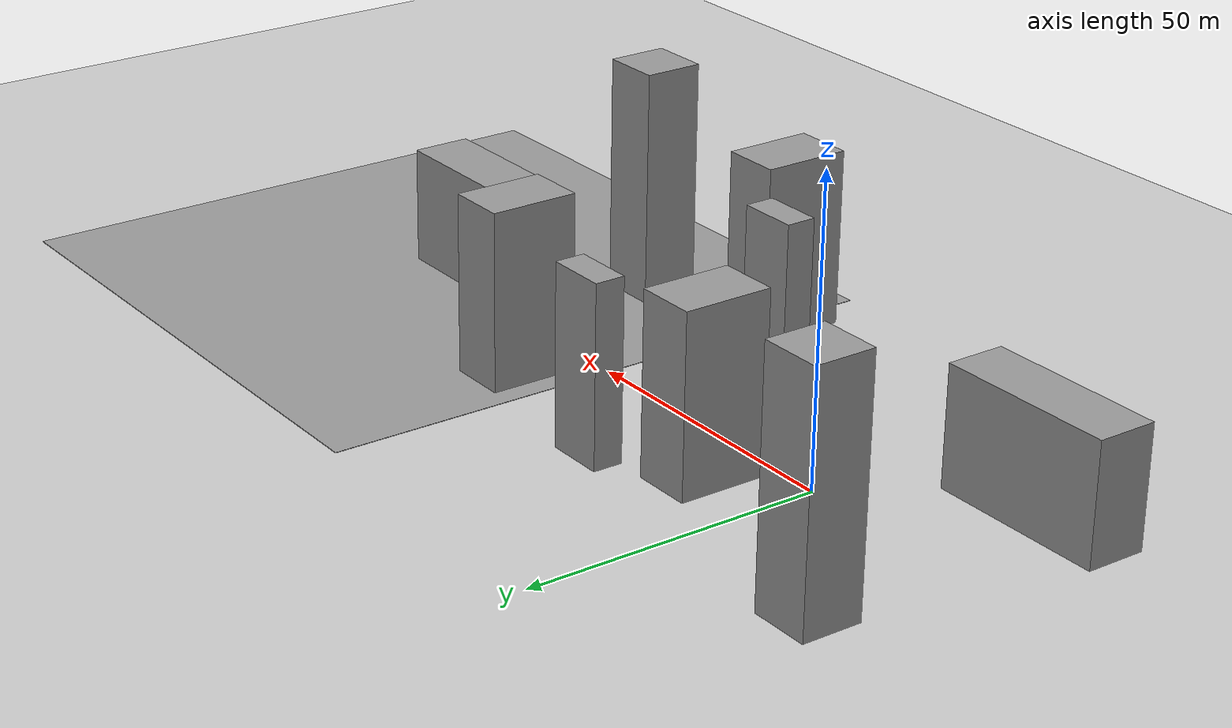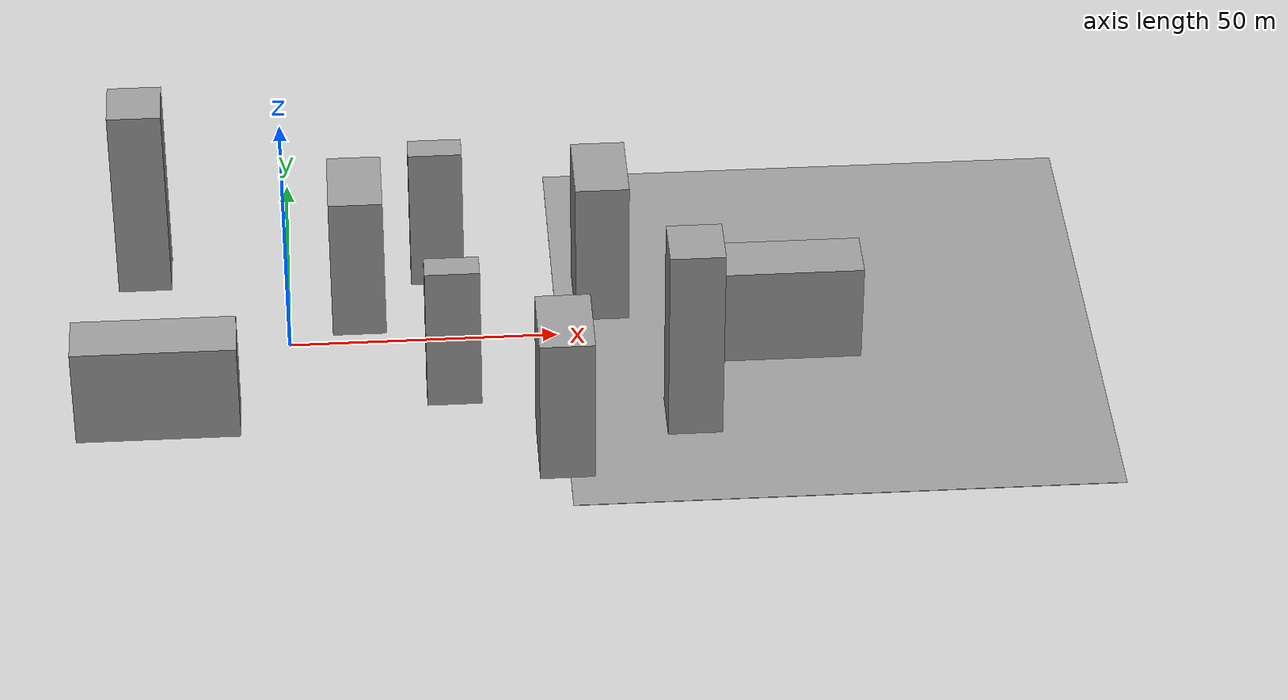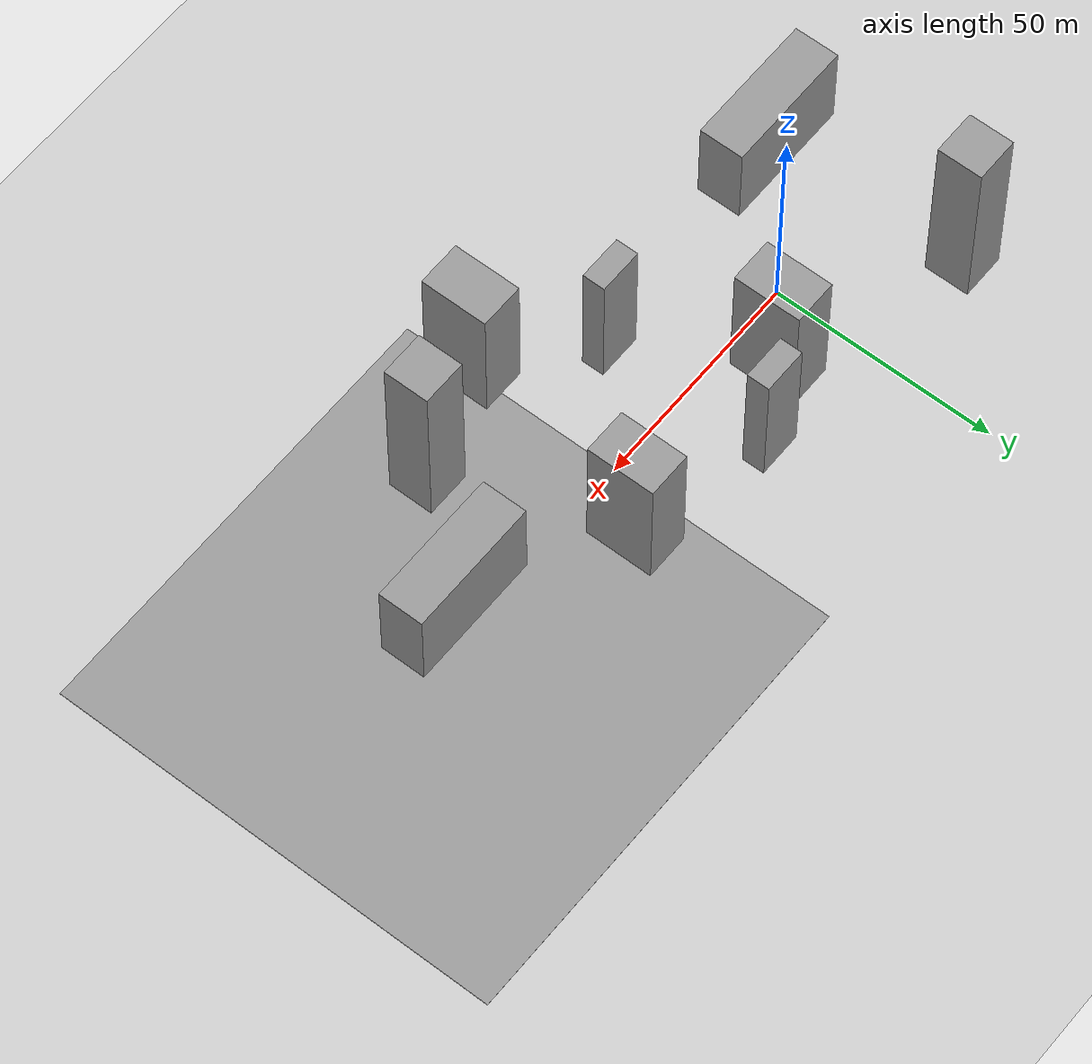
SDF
<sdf version="1.6">
 <world name="default">
  <light name="sun" type="directional">
   <pose>0 0 10 0 -0 0</pose>
   <diffuse>0.8 0.8 0.8 1</diffuse>
   <specular>0.2 0.2 0.2 1</specular>
   <attenuation>
    <range>1000</range>
    <constant>0.9</constant>
    <linear>0.01</linear>
    <quadratic>0.001</quadratic>
   </attenuation>
   <direction>-0.5 0.1 -0.9</direction>
  </light>
  <model name="ground_plane">
   <static>1</static>
   <link name="link">
    <collision name="collision">
     <geometry><plane><normal>0 0 1</normal><size>100 100</size></plane></geometry>
     <surface><friction><ode><mu>100</mu><mu2>50</mu2></ode></friction></surface>
    </collision>
    <visual name="visual">
     <cast_shadows>0</cast_shadows>
     <geometry><plane><normal>0 0 1</normal><size>100 100</size></plane></geometry>
     <material>
      <script><uri>file://media/materials/scripts/gazebo.material</uri><name>Gazebo/Grey</name></script>
     </material>
    </visual>
   </link>
  </model>
  <gravity>0 0 -9.8</gravity>
  <magnetic_field>6e-06 2.3e-05 -4.2e-05</magnetic_field>
  <atmosphere type="adiabatic"/>
  <physics name="default_physics" default="0" type="ode">
   <max_step_size>0.001</max_step_size>
   <real_time_factor>1</real_time_factor>
   <real_time_update_rate>1000</real_time_update_rate>
  </physics>
  <scene><ambient>0.4 0.4 0.4 1</ambient><background>0.7 0.7 0.7 1</background><shadows>1</shadows></scene>
  <spherical_coordinates>
   <surface_model>EARTH_WGS84</surface_model>
   <latitude_deg>0</latitude_deg>
   <longitude_deg>0</longitude_deg>
   <elevation>0</elevation>
   <heading_deg>0</heading_deg>
  </spherical_coordinates>
  <model name="ground_plane_0">
   <static>1</static>
   <link name="link">
    <collision name="collision">
     <geometry><plane><normal>0 0 1</normal><size>100 100</size></plane></geometry>
     <surface><friction><ode><mu>100</mu><mu2>50</mu2></ode></friction></surface>
    </collision>
    <visual name="visual">
     <cast_shadows>0</cast_shadows>
     <geometry><plane><normal>0 0 1</normal><size>100 100</size></plane></geometry>
     <material>
      <script><uri>file://media/materials/scripts/gazebo.material</uri><name>Gazebo/Grey</name></script>
     </material>
    </visual>
   </link>
   <pose>99.9656 0.118452 0 0 -0 0</pose>
  </model>
  <model name="building_4">
   <link name="link_2">
    <inertial>
     <mass>200000</mass>
     <inertia>
      <ixx>2.83333e+07</ixx>
      <ixy>0</ixy>
      <ixz>0</ixz>
      <iyy>2.83333e+07</iyy>
      <iyz>0</iyz>
      <izz>3.33333e+06</izz>
     </inertia>
    </inertial>
    <pose>0 0 20 0 -0 0</pose>
    <visual name="visual">
     <geometry><box><size>10 10 40</size></box></geometry>
     <material>
      <lighting>1</lighting>
      <script><uri>file://media/materials/scripts/gazebo.material</uri><name>Gazebo/Grey</name></script>
      <shader type="pixel"><normal_map>__default__</normal_map></shader>
      <ambient>0.3 0.3 0.3 1</ambient>
      <diffuse>0.7 0.7 0.7 1</diffuse>
      <specular>0.01 0.01 0.01 1</specular>
      <emissive>0 0 0 1</emissive>
     </material>
    </visual>
    <collision name="collision">
     <geometry><box><size>10 10 40</size></box></geometry>
     <surface>
      <friction>
       <ode><mu>1</mu><mu2>1</mu2><fdir1>0 0 0</fdir1><slip1>0</slip1><slip2>0</slip2></ode>
       <torsional>
        <coefficient>1</coefficient>
        <patch_radius>0</patch_radius>
        <surface_radius>0</surface_radius>
        <use_patch_radius>1</use_patch_radius>
        <ode><slip>0</slip></ode>
       </torsional>
      </friction>
      <bounce><restitution_coefficient>0</restitution_coefficient><threshold>1e+06</threshold></bounce>
      <contact>
       <collide_without_contact>0</collide_without_contact>
       <collide_without_contact_bitmask>1</collide_without_contact_bitmask>
       <collide_bitmask>1</collide_bitmask>
       <ode>
        <soft_cfm>0</soft_cfm>
        <soft_erp>0.2</soft_erp>
        <kp>1e+13</kp>
        <kd>1</kd>
        <max_vel>0.01</max_vel>
        <min_depth>0</min_depth>
       </ode>
       <bullet>
        <split_impulse>1</split_impulse>
        <split_impulse_penetration_threshold>-0.01</split_impulse_penetration_threshold>
        <soft_cfm>0</soft_cfm>
        <soft_erp>0.2</soft_erp>
        <kp>1e+13</kp>
        <kd>1</kd>
       </bullet>
      </contact>
     </surface>
    </collision>
   </link>
   <static>1</static>
   <pose>-27.2497 23.4822 0 0 -0 0</pose>
  </model>
  <model name="building_3_0">
   <link name="link_2">
    <inertial>
     <mass>3e+06</mass>
     <inertia>
      <ixx>1.25e+08</ixx>
      <ixy>0</ixy>
      <ixz>0</ixz>
      <iyy>3.25e+08</iyy>
      <iyz>0</iyz>
      <izz>2.5e+08</izz>
     </inertia>
    </inertial>
    <pose>0 0 10 0 -0 0</pose>
    <visual name="visual">
     <geometry><box><size>30 10 20</size></box></geometry>
     <material>
      <lighting>1</lighting>
      <script><uri>file://media/materials/scripts/gazebo.material</uri><name>Gazebo/Grey</name></script>
      <shader type="pixel"><normal_map>__default__</normal_map></shader>
      <ambient>0.3 0.3 0.3 1</ambient>
      <diffuse>0.7 0.7 0.7 1</diffuse>
      <specular>0.01 0.01 0.01 1</specular>
      <emissive>0 0 0 1</emissive>
     </material>
    </visual>
    <collision name="collision">
     <geometry><box><size>30 10 20</size></box></geometry>
     <surface>
      <friction>
       <ode><mu>1</mu><mu2>1</mu2><fdir1>0 0 0</fdir1><slip1>0</slip1><slip2>0</slip2></ode>
       <torsional>
        <coefficient>1</coefficient>
        <patch_radius>0</patch_radius>
        <surface_radius>0</surface_radius>
        <use_patch_radius>1</use_patch_radius>
        <ode><slip>0</slip></ode>
       </torsional>
      </friction>
      <bounce><restitution_coefficient>0</restitution_coefficient><threshold>1e+06</threshold></bounce>
      <contact>
       <collide_without_contact>0</collide_without_contact>
       <collide_without_contact_bitmask>1</collide_without_contact_bitmask>
       <collide_bitmask>1</collide_bitmask>
       <ode>
        <soft_cfm>0</soft_cfm>
        <soft_erp>0.2</soft_erp>
        <kp>1e+13</kp>
        <kd>1</kd>
        <max_vel>0.01</max_vel>
        <min_depth>0</min_depth>
       </ode>
       <bullet>
        <split_impulse>1</split_impulse>
        <split_impulse_penetration_threshold>-0.01</split_impulse_penetration_threshold>
        <soft_cfm>0</soft_cfm>
        <soft_erp>0.2</soft_erp>
        <kp>1e+13</kp>
        <kd>1</kd>
       </bullet>
      </contact>
     </surface>
    </collision>
   </link>
   <static>1</static>
   <pose>-24.3939 -21.3262 0 0 -0 0</pose>
  </model>
  <model name="building_2_1">
   <link name="link_2">
    <inertial>
     <mass>2.25e+06</mass>
     <inertia>
      <ixx>2.10938e+08</ixx>
      <ixy>0</ixy>
      <ixz>0</ixz>
      <iyy>1.875e+08</iyy>
      <iyz>0</iyz>
      <izz>6.09375e+07</izz>
     </inertia>
    </inertial>
    <pose>-0 -0 15 0 -0 0</pose>
    <visual name="visual">
     <geometry><box><size>10 15 30</size></box></geometry>
     <material>
      <lighting>1</lighting>
      <script><uri>file://media/materials/scripts/gazebo.material</uri><name>Gazebo/Grey</name></script>
      <shader type="pixel"><normal_map>__default__</normal_map></shader>
      <ambient>0.3 0.3 0.3 1</ambient>
      <diffuse>0.7 0.7 0.7 1</diffuse>
      <specular>0.01 0.01 0.01 1</specular>
      <emissive>0 0 0 1</emissive>
     </material>
    </visual>
    <collision name="collision">
     <geometry><box><size>10 15 30</size></box></geometry>
     <surface>
      <friction>
       <ode><mu>1</mu><mu2>1</mu2><fdir1>0 0 0</fdir1><slip1>0</slip1><slip2>0</slip2></ode>
       <torsional>
        <coefficient>1</coefficient>
        <patch_radius>0</patch_radius>
        <surface_radius>0</surface_radius>
        <use_patch_radius>1</use_patch_radius>
        <ode><slip>0</slip></ode>
       </torsional>
      </friction>
      <bounce><restitution_coefficient>0</restitution_coefficient><threshold>1e+06</threshold></bounce>
      <contact>
       <collide_without_contact>0</collide_without_contact>
       <collide_without_contact_bitmask>1</collide_without_contact_bitmask>
       <collide_bitmask>1</collide_bitmask>
       <ode>
        <soft_cfm>0</soft_cfm>
        <soft_erp>0.2</soft_erp>
        <kp>1e+13</kp>
        <kd>1</kd>
        <max_vel>0.01</max_vel>
        <min_depth>0</min_depth>
       </ode>
       <bullet>
        <split_impulse>1</split_impulse>
        <split_impulse_penetration_threshold>-0.01</split_impulse_penetration_threshold>
        <soft_cfm>0</soft_cfm>
        <soft_erp>0.2</soft_erp>
        <kp>1e+13</kp>
        <kd>1</kd>
       </bullet>
      </contact>
     </surface>
    </collision>
   </link>
   <static>1</static>
   <pose>13 10 0 0 -0 0</pose>
  </model>
  <model name="building_1_0">
   <link name="link_2">
    <inertial>
     <mass>750000</mass>
     <inertia>
      <ixx>5.78125e+07</ixx>
      <ixy>0</ixy>
      <ixz>0</ixz>
      <iyy>6.25e+07</iyy>
      <iyz>0</iyz>
      <izz>7.8125e+06</izz>
     </inertia>
    </inertial>
    <pose>0 0 15 0 -0 0</pose>
    <visual name="visual">
     <geometry><box><size>10 5 30</size></box></geometry>
     <material>
      <lighting>1</lighting>
      <script><uri>file://media/materials/scripts/gazebo.material</uri><name>Gazebo/Grey</name></script>
      <shader type="pixel"><normal_map>__default__</normal_map></shader>
      <ambient>0.3 0.3 0.3 1</ambient>
      <diffuse>0.7 0.7 0.7 1</diffuse>
      <specular>0.01 0.01 0.01 1</specular>
      <emissive>0 0 0 1</emissive>
     </material>
    </visual>
    <collision name="collision">
     <geometry><box><size>10 5 30</size></box></geometry>
     <surface>
      <friction>
       <ode><mu>1</mu><mu2>1</mu2><fdir1>0 0 0</fdir1><slip1>0</slip1><slip2>0</slip2></ode>
       <torsional>
        <coefficient>1</coefficient>
        <patch_radius>0</patch_radius>
        <surface_radius>0</surface_radius>
        <use_patch_radius>1</use_patch_radius>
        <ode><slip>0</slip></ode>
       </torsional>
      </friction>
      <bounce><restitution_coefficient>0</restitution_coefficient><threshold>1e+06</threshold></bounce>
      <contact>
       <collide_without_contact>0</collide_without_contact>
       <collide_without_contact_bitmask>1</collide_without_contact_bitmask>
       <collide_bitmask>1</collide_bitmask>
       <ode>
        <soft_cfm>0</soft_cfm>
        <soft_erp>0.2</soft_erp>
        <kp>1e+13</kp>
        <kd>1</kd>
        <max_vel>0.01</max_vel>
        <min_depth>0</min_depth>
       </ode>
       <bullet>
        <split_impulse>1</split_impulse>
        <split_impulse_penetration_threshold>-0.01</split_impulse_penetration_threshold>
        <soft_cfm>0</soft_cfm>
        <soft_erp>0.2</soft_erp>
        <kp>1e+13</kp>
        <kd>1</kd>
       </bullet>
      </contact>
     </surface>
    </collision>
   </link>
   <static>1</static>
   <pose>28.1842 19.6114 0 0 -0 0</pose>
  </model>
  <model name="building_1">
   <link name="link_2">
    <inertial>
     <mass>750000</mass>
     <inertia>
      <ixx>5.78125e+07</ixx>
      <ixy>0</ixy>
      <ixz>0</ixz>
      <iyy>6.25e+07</iyy>
      <iyz>0</iyz>
      <izz>7.8125e+06</izz>
     </inertia>
    </inertial>
    <pose>0 0 15 0 -0 0</pose>
    <visual name="visual">
     <geometry><box><size>10 5 30</size></box></geometry>
     <material>
      <lighting>1</lighting>
      <script><uri>file://media/materials/scripts/gazebo.material</uri><name>Gazebo/Grey</name></script>
      <shader type="pixel"><normal_map>__default__</normal_map></shader>
      <ambient>0.3 0.3 0.3 1</ambient>
      <diffuse>0.7 0.7 0.7 1</diffuse>
      <specular>0.01 0.01 0.01 1</specular>
      <emissive>0 0 0 1</emissive>
     </material>
    </visual>
    <collision name="collision">
     <geometry><box><size>10 5 30</size></box></geometry>
     <surface>
      <friction>
       <ode><mu>1</mu><mu2>1</mu2><fdir1>0 0 0</fdir1><slip1>0</slip1><slip2>0</slip2></ode>
       <torsional>
        <coefficient>1</coefficient>
        <patch_radius>0</patch_radius>
        <surface_radius>0</surface_radius>
        <use_patch_radius>1</use_patch_radius>
        <ode><slip>0</slip></ode>
       </torsional>
      </friction>
      <bounce><restitution_coefficient>0</restitution_coefficient><threshold>1e+06</threshold></bounce>
      <contact>
       <collide_without_contact>0</collide_without_contact>
       <collide_without_contact_bitmask>1</collide_without_contact_bitmask>
       <collide_bitmask>1</collide_bitmask>
       <ode>
        <soft_cfm>0</soft_cfm>
        <soft_erp>0.2</soft_erp>
        <kp>1e+13</kp>
        <kd>1</kd>
        <max_vel>0.01</max_vel>
        <min_depth>0</min_depth>
       </ode>
       <bullet>
        <split_impulse>1</split_impulse>
        <split_impulse_penetration_threshold>-0.01</split_impulse_penetration_threshold>
        <soft_cfm>0</soft_cfm>
        <soft_erp>0.2</soft_erp>
        <kp>1e+13</kp>
        <kd>1</kd>
       </bullet>
      </contact>
     </surface>
    </collision>
   </link>
   <static>1</static>
   <pose>29.9339 -17.0964 0 0 -0 0</pose>
  </model>
  <model name="building_2">
   <link name="link_2">
    <inertial>
     <mass>2.25e+06</mass>
     <inertia>
      <ixx>2.10938e+08</ixx>
      <ixy>0</ixy>
      <ixz>0</ixz>
      <iyy>1.875e+08</iyy>
      <iyz>0</iyz>
      <izz>6.09375e+07</izz>
     </inertia>
    </inertial>
    <pose>-0 -0 15 0 -0 0</pose>
    <visual name="visual">
     <geometry><box><size>10 15 30</size></box></geometry>
     <material>
      <lighting>1</lighting>
      <script><uri>file://media/materials/scripts/gazebo.material</uri><name>Gazebo/Grey</name></script>
      <shader type="pixel"><normal_map>__default__</normal_map></shader>
      <ambient>0.3 0.3 0.3 1</ambient>
      <diffuse>0.7 0.7 0.7 1</diffuse>
      <specular>0.01 0.01 0.01 1</specular>
      <emissive>0 0 0 1</emissive>
     </material>
    </visual>
    <collision name="collision">
     <geometry><box><size>10 15 30</size></box></geometry>
     <surface>
      <friction>
       <ode><mu>1</mu><mu2>1</mu2><fdir1>0 0 0</fdir1><slip1>0</slip1><slip2>0</slip2></ode>
       <torsional>
        <coefficient>1</coefficient>
        <patch_radius>0</patch_radius>
        <surface_radius>0</surface_radius>
        <use_patch_radius>1</use_patch_radius>
        <ode><slip>0</slip></ode>
       </torsional>
      </friction>
      <bounce><restitution_coefficient>0</restitution_coefficient><threshold>1e+06</threshold></bounce>
      <contact>
       <collide_without_contact>0</collide_without_contact>
       <collide_without_contact_bitmask>1</collide_without_contact_bitmask>
       <collide_bitmask>1</collide_bitmask>
       <ode>
        <soft_cfm>0</soft_cfm>
        <soft_erp>0.2</soft_erp>
        <kp>1e+13</kp>
        <kd>1</kd>
        <max_vel>0.01</max_vel>
        <min_depth>0</min_depth>
       </ode>
       <bullet>
        <split_impulse>1</split_impulse>
        <split_impulse_penetration_threshold>-0.01</split_impulse_penetration_threshold>
        <soft_cfm>0</soft_cfm>
        <soft_erp>0.2</soft_erp>
        <kp>1e+13</kp>
        <kd>1</kd>
       </bullet>
      </contact>
     </surface>
    </collision>
   </link>
   <static>1</static>
   <pose>58.6544 11.6328 0 0 -0 0</pose>
  </model>
  <model name="building_3">
   <link name="link_2">
    <inertial>
     <mass>3e+06</mass>
     <inertia>
      <ixx>1.25e+08</ixx>
      <ixy>0</ixy>
      <ixz>0</ixz>
      <iyy>3.25e+08</iyy>
      <iyz>0</iyz>
      <izz>2.5e+08</izz>
     </inertia>
    </inertial>
    <pose>0 0 10 0 -0 0</pose>
    <visual name="visual">
     <geometry><box><size>30 10 20</size></box></geometry>
     <material>
      <lighting>1</lighting>
      <script><uri>file://media/materials/scripts/gazebo.material</uri><name>Gazebo/Grey</name></script>
      <shader type="pixel"><normal_map>__default__</normal_map></shader>
      <ambient>0.3 0.3 0.3 1</ambient>
      <diffuse>0.7 0.7 0.7 1</diffuse>
      <specular>0.01 0.01 0.01 1</specular>
      <emissive>0 0 0 1</emissive>
     </material>
    </visual>
    <collision name="collision">
     <geometry><box><size>30 10 20</size></box></geometry>
     <surface>
      <friction>
       <ode><mu>1</mu><mu2>1</mu2><fdir1>0 0 0</fdir1><slip1>0</slip1><slip2>0</slip2></ode>
       <torsional>
        <coefficient>1</coefficient>
        <patch_radius>0</patch_radius>
        <surface_radius>0</surface_radius>
        <use_patch_radius>1</use_patch_radius>
        <ode><slip>0</slip></ode>
       </torsional>
      </friction>
      <bounce><restitution_coefficient>0</restitution_coefficient><threshold>1e+06</threshold></bounce>
      <contact>
       <collide_without_contact>0</collide_without_contact>
       <collide_without_contact_bitmask>1</collide_without_contact_bitmask>
       <collide_bitmask>1</collide_bitmask>
       <ode>
        <soft_cfm>0</soft_cfm>
        <soft_erp>0.2</soft_erp>
        <kp>1e+13</kp>
        <kd>1</kd>
        <max_vel>0.01</max_vel>
        <min_depth>0</min_depth>
       </ode>
       <bullet>
        <split_impulse>1</split_impulse>
        <split_impulse_penetration_threshold>-0.01</split_impulse_penetration_threshold>
        <soft_cfm>0</soft_cfm>
        <soft_erp>0.2</soft_erp>
        <kp>1e+13</kp>
        <kd>1</kd>
       </bullet>
      </contact>
     </surface>
    </collision>
   </link>
   <static>1</static>
   <pose>91.0895 -5.11231 0 0 -0 0</pose>
  </model>
  <model name="building_4_0">
   <link name="link_2">
    <inertial>
     <mass>200000</mass>
     <inertia>
      <ixx>2.83333e+07</ixx>
      <ixy>0</ixy>
      <ixz>0</ixz>
      <iyy>2.83333e+07</iyy>
      <iyz>0</iyz>
      <izz>3.33333e+06</izz>
     </inertia>
    </inertial>
    <pose>0 0 20 0 -0 0</pose>
    <visual name="visual">
     <geometry><box><size>10 10 40</size></box></geometry>
     <material>
      <lighting>1</lighting>
      <script><uri>file://media/materials/scripts/gazebo.material</uri><name>Gazebo/Grey</name></script>
      <shader type="pixel"><normal_map>__default__</normal_map></shader>
      <ambient>0.3 0.3 0.3 1</ambient>
      <diffuse>0.7 0.7 0.7 1</diffuse>
      <specular>0.01 0.01 0.01 1</specular>
      <emissive>0 0 0 1</emissive>
     </material>
    </visual>
    <collision name="collision">
     <geometry><box><size>10 10 40</size></box></geometry>
     <surface>
      <friction>
       <ode><mu>1</mu><mu2>1</mu2><fdir1>0 0 0</fdir1><slip1>0</slip1><slip2>0</slip2></ode>
       <torsional>
        <coefficient>1</coefficient>
        <patch_radius>0</patch_radius>
        <surface_radius>0</surface_radius>
        <use_patch_radius>1</use_patch_radius>
        <ode><slip>0</slip></ode>
       </torsional>
      </friction>
      <bounce><restitution_coefficient>0</restitution_coefficient><threshold>1e+06</threshold></bounce>
      <contact>
       <collide_without_contact>0</collide_without_contact>
       <collide_without_contact_bitmask>1</collide_without_contact_bitmask>
       <collide_bitmask>1</collide_bitmask>
       <ode>
        <soft_cfm>0</soft_cfm>
        <soft_erp>0.2</soft_erp>
        <kp>1e+13</kp>
        <kd>1</kd>
        <max_vel>0.01</max_vel>
        <min_depth>0</min_depth>
       </ode>
       <bullet>
        <split_impulse>1</split_impulse>
        <split_impulse_penetration_threshold>-0.01</split_impulse_penetration_threshold>
        <soft_cfm>0</soft_cfm>
        <soft_erp>0.2</soft_erp>
        <kp>1e+13</kp>
        <kd>1</kd>
       </bullet>
      </contact>
     </surface>
    </collision>
   </link>
   <static>1</static>
   <pose>73.4288 -25.9045 0 0 -0 0</pose>
  </model>
  <model name="building_2_0">
   <link name="link_2">
    <inertial>
     <mass>2.25e+06</mass>
     <inertia>
      <ixx>2.10938e+08</ixx>
      <ixy>0</ixy>
      <ixz>0</ixz>
      <iyy>1.875e+08</iyy>
      <iyz>0</iyz>
      <izz>6.09375e+07</izz>
     </inertia>
    </inertial>
    <pose>-0 -0 15 0 -0 0</pose>
    <visual name="visual">
     <geometry><box><size>10 15 30</size></box></geometry>
     <material>
      <lighting>1</lighting>
      <script><uri>file://media/materials/scripts/gazebo.material</uri><name>Gazebo/Grey</name></script>
      <shader type="pixel"><normal_map>__default__</normal_map></shader>
      <ambient>0.3 0.3 0.3 1</ambient>
      <diffuse>0.7 0.7 0.7 1</diffuse>
      <specular>0.01 0.01 0.01 1</specular>
      <emissive>0 0 0 1</emissive>
     </material>
    </visual>
    <collision name="collision">
     <geometry><box><size>10 15 30</size></box></geometry>
     <surface>
      <friction>
       <ode><mu>1</mu><mu2>1</mu2><fdir1>0 0 0</fdir1><slip1>0</slip1><slip2>0</slip2></ode>
       <torsional>
        <coefficient>1</coefficient>
        <patch_radius>0</patch_radius>
        <surface_radius>0</surface_radius>
        <use_patch_radius>1</use_patch_radius>
        <ode><slip>0</slip></ode>
       </torsional>
      </friction>
      <bounce><restitution_coefficient>0</restitution_coefficient><threshold>1e+06</threshold></bounce>
      <contact>
       <collide_without_contact>0</collide_without_contact>
       <collide_without_contact_bitmask>1</collide_without_contact_bitmask>
       <collide_bitmask>1</collide_bitmask>
       <ode>
        <soft_cfm>0</soft_cfm>
        <soft_erp>0.2</soft_erp>
        <kp>1e+13</kp>
        <kd>1</kd>
        <max_vel>0.01</max_vel>
        <min_depth>0</min_depth>
       </ode>
       <bullet>
        <split_impulse>1</split_impulse>
        <split_impulse_penetration_threshold>-0.01</split_impulse_penetration_threshold>
        <soft_cfm>0</soft_cfm>
        <soft_erp>0.2</soft_erp>
        <kp>1e+13</kp>
        <kd>1</kd>
       </bullet>
      </contact>
     </surface>
    </collision>
   </link>
   <static>1</static>
   <pose>49.4493 -34.5101 0 0 -0 0</pose>
  </model>
 </world>
</sdf>
